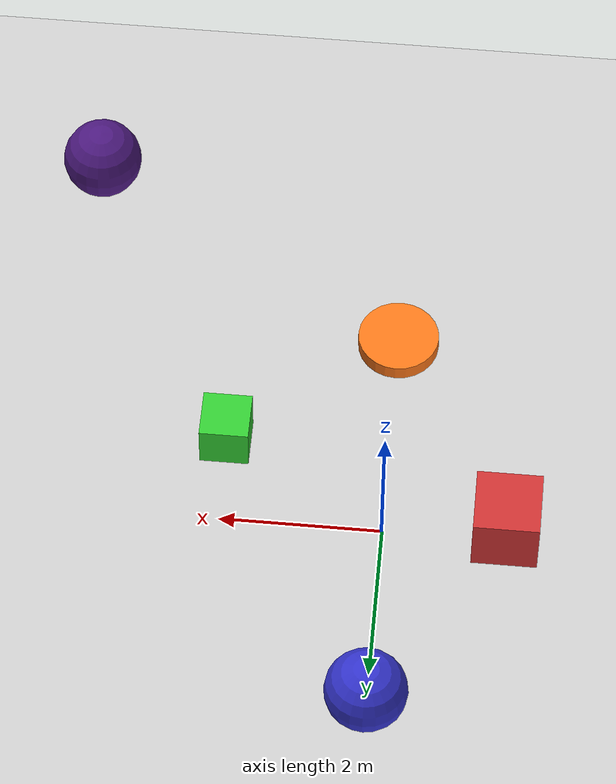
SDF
<?xml version="1.0" ?>
<sdf version="1.6">
  <world name="lidar_test_world">

    <plugin filename="ignition-gazebo-sensors-system"
            name="gz::sim::systems::Sensors">
            <render_engine>ogre2</render_engine>
    </plugin>
    <plugin filename="ignition-gazebo-scene-broadcaster-system"
            name="gz::sim::systems::SceneBroadcaster"/>
    <plugin filename="gz-sim-user-commands-system"
            name="gz::sim::systems::UserCommands"/>

    <!-- Земля -->
    <include>
      <uri>https://fuel.gazebosim.org/1.0/OpenRobotics/models/Ground Plane</uri>
    </include>

    <light name="sun" type="directional">
      <pose>0 0 10 0 0 0</pose>
      <direction>0 0 -1</direction>
      <diffuse>1 1 1 1</diffuse>
      <specular>0.1 0.1 0.1 1</specular>
    </light>

    <!-- Объекты для сканирования (с цветами) -->

    <!-- Красный кубик слева -->
    <model name="box_left">
      <pose>-1.5 0 0.5 0 0 0</pose>
      <link name="box_left_link">
        <inertial>
          <inertia>
            <ixx>1</ixx>
            <ixy>0</ixy>
            <ixz>0</ixz>
            <iyy>1</iyy>
            <iyz>0</iyz>
            <izz>1</izz>
          </inertia>
          <mass>1.0</mass>
        </inertial>
        <collision name="box_left_collision">
          <geometry>
            <box>
              <size>0.8 0.8 0.8</size>
            </box>
          </geometry>
        </collision>
        <visual name="box_left_visual">
          <geometry>
            <box>
              <size>0.8 0.8 0.8</size>
            </box>
          </geometry>
          <material>
            <ambient>0.8 0.2 0.2 1</ambient>
            <diffuse>0.8 0.2 0.2 1</diffuse>
            <specular>0.1 0.1 0.1 1</specular>
          </material>
        </visual>
      </link>
    </model>

    <!-- Зелёный кубик справа -->
    <model name="box_right">
      <pose>2.0 -1.0 0.5 0 0 0</pose>
      <link name="box_right_link">
        <inertial>
          <inertia>
            <ixx>1</ixx>
            <ixy>0</ixy>
            <ixz>0</ixz>
            <iyy>1</iyy>
            <iyz>0</iyz>
            <izz>1</izz>
          </inertia>
          <mass>1.0</mass>
        </inertial>
        <collision name="box_right_collision">
          <geometry>
            <box>
              <size>0.6 0.6 0.6</size>
            </box>
          </geometry>
        </collision>
        <visual name="box_right_visual">
          <geometry>
            <box>
              <size>0.6 0.6 0.6</size>
            </box>
          </geometry>
          <material>
            <ambient>0.2 0.8 0.2 1</ambient>
            <diffuse>0.2 0.8 0.2 1</diffuse>
            <specular>0.1 0.1 0.1 1</specular>
          </material>
        </visual>
      </link>
    </model>

    <!-- Синяя сфера сзади -->
    <model name="sphere_back">
      <pose>0 2.5 0.5 0 0 0</pose>
      <link name="sphere_link">
        <collision name="collision">
          <geometry><sphere><radius>0.5</radius></sphere></geometry>
        </collision>
        <visual name="sphere_visual">
          <geometry><sphere><radius>0.5</radius></sphere></geometry>
          <material>
            <ambient>0.2 0.2 0.8 1</ambient>
            <diffuse>0.2 0.2 0.8 1</diffuse>
            <specular>0.1 0.1 0.1 1</specular>
          </material>
        </visual>
        <inertial>
          <mass>1.0</mass>
          <inertia><ixx>0.1</ixx><iyy>0.1</iyy><izz>0.1</izz></inertia>
        </inertial>
      </link>
    </model>

    <model name="cylinder_orange">
      <pose>0 -2.5 0.5 0 0 0</pose>
      <link name="Cylinder_link">
        <collision name="collision">
          <geometry><cylinder><radius>0.5</radius> <length>0.2</length></cylinder></geometry>
        </collision>
        <visual name="Cylinder_visual">
          <geometry><cylinder><radius>0.5</radius> <length>0.2</length></cylinder></geometry>
          <material>
            <ambient>1.0, 0.47, 0.1 1</ambient>
            <diffuse>1.0, 0.47, 0.1 1</diffuse>
            <specular>1.0, 0.47, 0.1 1</specular>
          </material>
        </visual>
        <inertial>
          <mass>1.0</mass>
          <inertia><ixx>0.06583</ixx><iyy>0.06583</iyy><izz>0.125</izz></inertia>
         </inertial>
      </link>
    </model>
    <!-- Сфера, созданная для проверки Git -->
    <model name="test_sphere">
      <pose>4.0 -5.0 0.5 0 0 0</pose>
      <link name="test_sphere_link">
        <collision name="test_sphere_collision">
          <geometry><sphere><radius>0.5</radius></sphere></geometry>
        </collision>
        <visual name="test_sphere_visual">
          <geometry><sphere><radius>0.5</radius></sphere></geometry>
          <material>
            <ambient>0.5 0.4 0.3 1</ambient>
            <diffuse>0.3 0.1 0.5 1</diffuse>
            <specular>0.1 0.1 0.1 1</specular>
          </material>
        </visual>
        <inertial>
          <inertia>
            <ixx>1</ixx>
            <ixy>0</ixy>
            <ixz>0</ixz>
            <iyy>1</iyy>
            <iyz>0</iyz>
            <izz>1</izz>
          </inertia>
          <mass>1.0</mass>
        </inertial>
      </link>
    </model>

    <!-- Модель с лидаром -->
    <model name="lidar_station" static="true">
      <pose>0 0 0 0 2 0</pose>
      <link name="laser_link">
        <pose>0 0 0.3 0 0 0</pose>
        <visual name="laser_visual">
          <geometry>
            <cylinder>
              <radius>0.05</radius>
              <length>0.02</length>
            </cylinder>
          </geometry>
          <material>
            <ambient>0.5 0.5 0.5 1</ambient>   <!-- серый -->
            <diffuse>0.7 0.7 0.7 1</diffuse>
            <specular>0.2 0.2 0.2 1</specular>
          </material>
        </visual>
        <collision name="laser_collision">
          <geometry>
            <cylinder>
              <radius>0.05</radius>
              <length>0.02</length>
            </cylinder>
          </geometry>
        </collision>

        <!-- Сенсор лидара прикреплён к этой ссылке -->
        <sensor name="lidar" type="gpu_ray">
          <topic>/lidar/scan</topic>
          <update_rate>10</update_rate>
          <ignition_frame_id>laser_link</ignition_frame_id>
          <ray>
            <scan>
              <horizontal>
                <samples>10</samples>
                <resolution>1.0</resolution>
                <min_angle>-0.1</min_angle>
                <max_angle>0.1</max_angle>
              </horizontal>
            </scan>
            <range>
              <min>0.62</min>
              <max>1.0</max>
              <resolution>0.01</resolution>
            </range>
          </ray>
          <always_on>true</always_on>
          <visualize>true</visualize>
        </sensor>
      </link>

    </model>
  </world>
</sdf>
